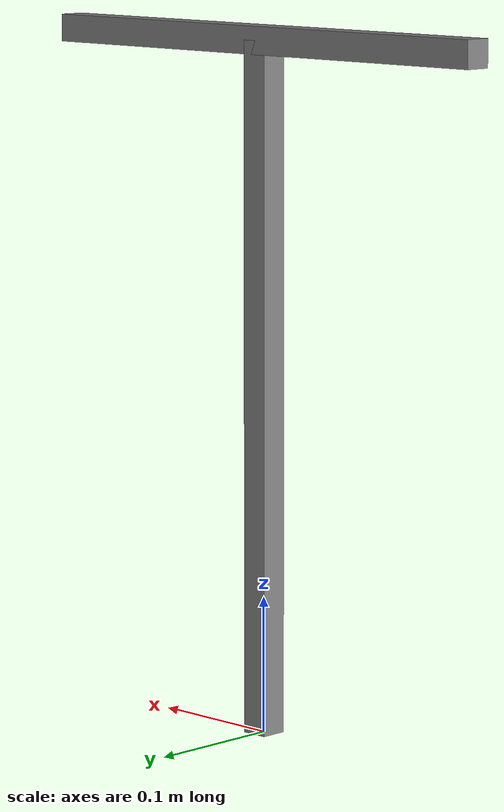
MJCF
<mujoco>
    <compiler angle = "degree"/>
    <option>
        <flag gravity = "enable" contact = "disable"/>

    </option>
    <asset>
        <texture name="grid" type="2d" builtin="checker" rgb1=".1 .2 .3"
            rgb2=".2 .3 .4" width="300" height="300" mark="none"/>
        <material name="grid" texture="grid" texrepeat="1 1"
            texuniform="true" reflectance=".2"/>
    </asset>

    <worldbody>

        <body name = "pendulum" gravcomp = "0">-->
            <joint name = "pend_joint" type = "hinge" axis = "0 1 0" pos = "0 0 0"/>
            <geom name = "pend_stick" type = "box" fromto = "0 0 0 0 0 .5" size = ".01 .01" mass = "10"/>
            <body name = "prop_bar" pos = "0 0 .5" gravcomp = "0">
                <geom name = "propeller_body" type = "box" size = ".01 .01 .2" mass = "10" axisangle = "0 1 0 90"/>
                <site name = "IMU_loc"/>
                <site name = "prop_1" pos = "-.1 0 0"/>
                <site name = "prop_2" pos = ".1 0 0"/>
            </body>
        </body>

    </worldbody>

    <actuator>
        <motor name = "propeller1" site = "prop_1" gear = "0 0 0 0 0 1"/>
        <motor name = "propeller2" site = "prop_1" gear = "0 0 0 0 0 1"/>
    </actuator>

    <sensor>
        <accelerometer name = "IMU_acc" site = "IMU_loc" noise = ".01"/>
        <gyro name = "IMU_gyro" site = "IMU_loc" noise = ".01"/>
    </sensor>

</mujoco>
